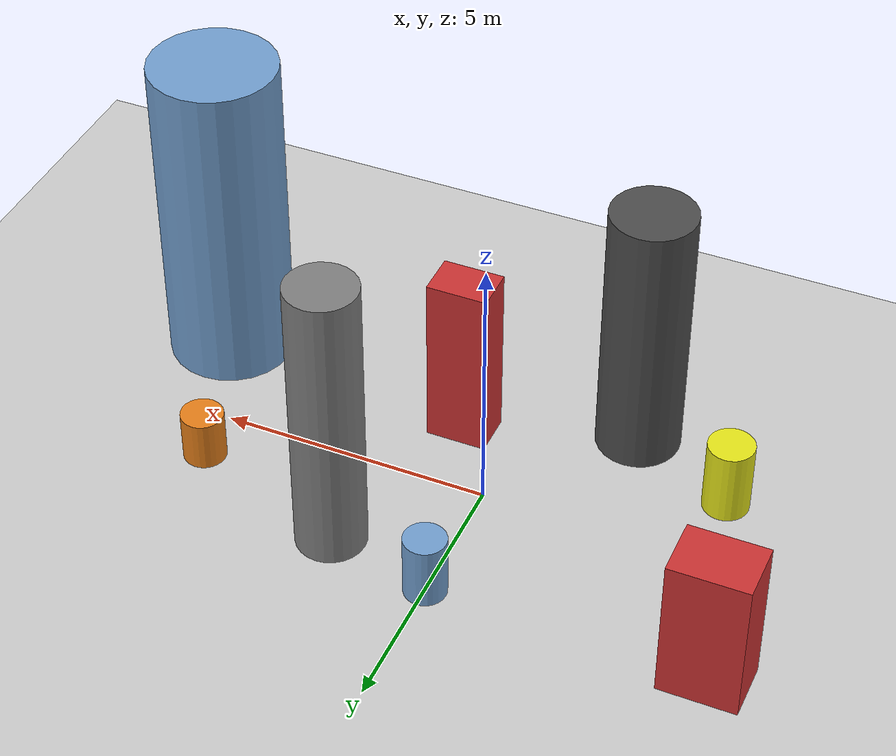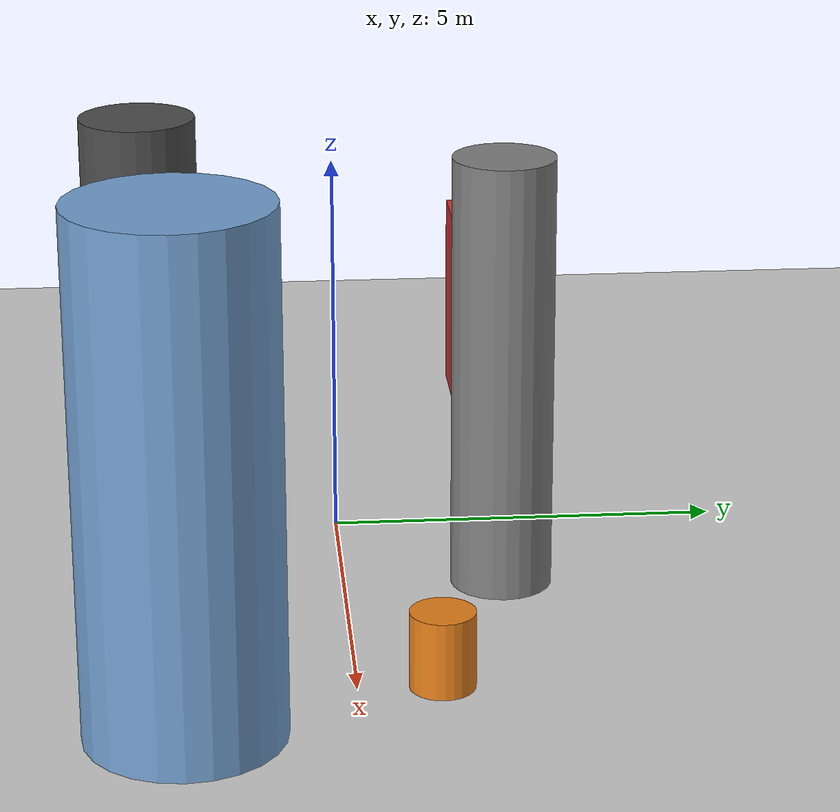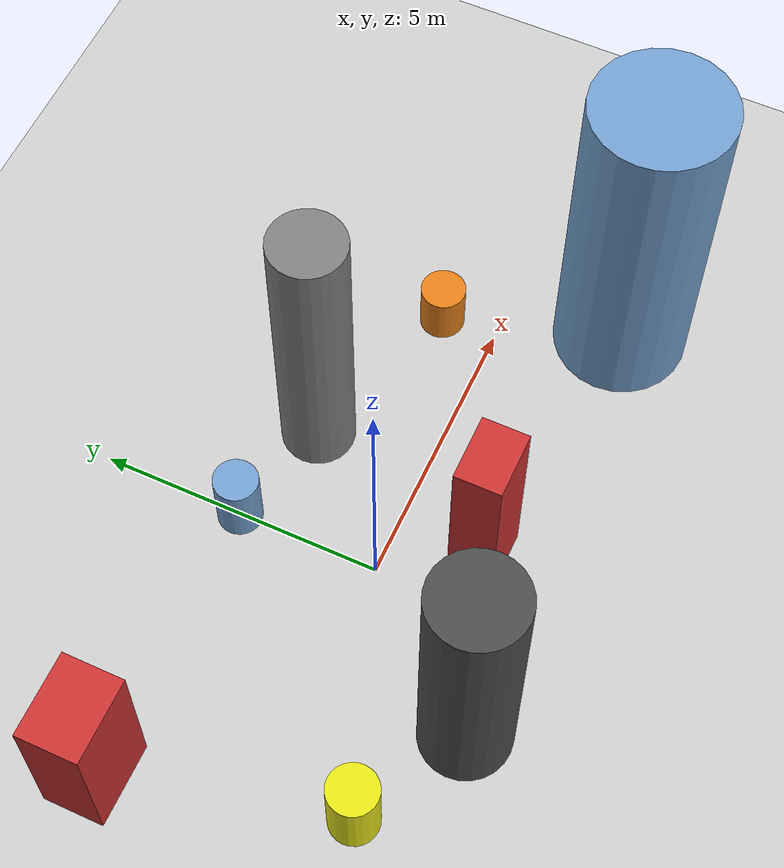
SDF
<?xml version='1.0'?>
<sdf version='1.6'>
  <world name='routeA_rl_v1__support_expansion__rl_train__mixed_3d_low_density_route__000008'>
    <!-- Sun light -->
    <light name='sun' type='directional'>
      <cast_shadows>1</cast_shadows>
      <pose>0 0 10 0 0 0</pose>
      <diffuse>0.8 0.8 0.8 1</diffuse>
      <specular>0.2 0.2 0.2 1</specular>
      <attenuation>
        <range>1000</range>
        <constant>0.9</constant>
        <linear>0.01</linear>
        <quadratic>0.001</quadratic>
      </attenuation>
      <direction>-0.5 0.1 -0.9</direction>
    </light>

    <!-- Ground plane -->
    <model name='ground_plane'>
      <static>1</static>
      <link name='link'>
        <collision name='collision'>
          <geometry>
            <plane>
              <normal>0 0 1</normal>
              <size>100 100</size>
            </plane>
          </geometry>
          <surface>
            <contact>
              <collide_bitmask>65535</collide_bitmask>
              <ode/>
            </contact>
            <friction>
              <ode>
                <mu>100</mu>
                <mu2>50</mu2>
              </ode>
              <torsional><ode/></torsional>
            </friction>
            <bounce/>
          </surface>
          <max_contacts>10</max_contacts>
        </collision>
        <visual name='visual'>
          <cast_shadows>0</cast_shadows>
          <geometry>
            <plane>
              <normal>0 0 1</normal>
              <size>100 100</size>
            </plane>
          </geometry>
          <material>
            <script>
              <uri>file://media/materials/scripts/gazebo.material</uri>
              <n>Gazebo/Grey</n>
            </script>
          </material>
        </visual>
      </link>
    </model>

    <!-- Environment -->
    <magnetic_field>6e-06 2.3e-05 -4.2e-05</magnetic_field>
    <atmosphere type='adiabatic'/>
    <physics name='default_physics' default='0' type='ode'>
      <gravity>0 0 -9.8</gravity>
      <max_step_size>0.004</max_step_size>
      <real_time_factor>1</real_time_factor>
      <real_time_update_rate>250</real_time_update_rate>
    </physics>
    <scene>
      <ambient>0.4 0.4 0.4 1</ambient>
      <background>0.7 0.7 0.7 1</background>
      <shadows>1</shadows>
    </scene>
    <wind/>
    <spherical_coordinates>
      <surface_model>EARTH_WGS84</surface_model>
      <latitude_deg>0</latitude_deg>
      <longitude_deg>0</longitude_deg>
      <elevation>0</elevation>
      <heading_deg>0</heading_deg>
    </spherical_coordinates>

    <!-- ============ OBSTACLES (8) ============ -->
    <model name='low_obs_0'>
      <static>1</static>
      <link name='link'>
        <visual name='visual'>
          <geometry>
            <cylinder>
              <radius>0.4258</radius>
              <length>1.4235</length>
            </cylinder>
          </geometry>
          <material>
            <script>
              <n>Gazebo/Yellow</n>
              <uri>file://media/materials/scripts/gazebo.material</uri>
            </script>
            <ambient>0.9 0.9 0.1 1</ambient>
          </material>
        </visual>
        <collision name='collision'>
          <geometry>
            <cylinder>
              <radius>0.4258</radius>
              <length>1.4235</length>
            </cylinder>
          </geometry>
          <max_contacts>10</max_contacts>
          <surface>
            <contact><ode/></contact>
            <bounce/>
            <friction>
              <ode><mu>1</mu><mu2>1</mu2></ode>
              <torsional><ode/></torsional>
            </friction>
          </surface>
        </collision>
      </link>
      <pose>-4.0000 -1.5000 0.7118 0 0 0.0000</pose>
    </model>

    <model name='low_obs_1'>
      <static>1</static>
      <link name='link'>
        <visual name='visual'>
          <geometry>
            <cylinder>
              <radius>0.3865</radius>
              <length>1.2167</length>
            </cylinder>
          </geometry>
          <material>
            <script>
              <n>Gazebo/Blue</n>
              <uri>file://media/materials/scripts/gazebo.material</uri>
            </script>
            <ambient>0.447 0.624 0.812 1</ambient>
          </material>
        </visual>
        <collision name='collision'>
          <geometry>
            <cylinder>
              <radius>0.3865</radius>
              <length>1.2167</length>
            </cylinder>
          </geometry>
          <max_contacts>10</max_contacts>
          <surface>
            <contact><ode/></contact>
            <bounce/>
            <friction>
              <ode><mu>1</mu><mu2>1</mu2></ode>
              <torsional><ode/></torsional>
            </friction>
          </surface>
        </collision>
      </link>
      <pose>0.0000 2.5000 0.6083 0 0 0.0000</pose>
    </model>

    <model name='low_obs_2'>
      <static>1</static>
      <link name='link'>
        <visual name='visual'>
          <geometry>
            <cylinder>
              <radius>0.3949</radius>
              <length>0.9602</length>
            </cylinder>
          </geometry>
          <material>
            <script>
              <n>Gazebo/Orange</n>
              <uri>file://media/materials/scripts/gazebo.material</uri>
            </script>
            <ambient>0.9 0.5 0.1 1</ambient>
          </material>
        </visual>
        <collision name='collision'>
          <geometry>
            <cylinder>
              <radius>0.3949</radius>
              <length>0.9602</length>
            </cylinder>
          </geometry>
          <max_contacts>10</max_contacts>
          <surface>
            <contact><ode/></contact>
            <bounce/>
            <friction>
              <ode><mu>1</mu><mu2>1</mu2></ode>
              <torsional><ode/></torsional>
            </friction>
          </surface>
        </collision>
      </link>
      <pose>5.0000 1.0000 0.4801 0 0 0.0000</pose>
    </model>

    <model name='tall_obs_0'>
      <static>1</static>
      <link name='link'>
        <visual name='visual'>
          <geometry>
            <cylinder>
              <radius>0.7789</radius>
              <length>5.1048</length>
            </cylinder>
          </geometry>
          <material>
            <script>
              <n>Gazebo/DarkGrey</n>
              <uri>file://media/materials/scripts/gazebo.material</uri>
            </script>
            <ambient>0.3 0.3 0.3 1</ambient>
          </material>
        </visual>
        <collision name='collision'>
          <geometry>
            <cylinder>
              <radius>0.7789</radius>
              <length>5.1048</length>
            </cylinder>
          </geometry>
          <max_contacts>10</max_contacts>
          <surface>
            <contact><ode/></contact>
            <bounce/>
            <friction>
              <ode><mu>1</mu><mu2>1</mu2></ode>
              <torsional><ode/></torsional>
            </friction>
          </surface>
        </collision>
      </link>
      <pose>-2.0000 -2.5000 2.5524 0 0 0.0000</pose>
    </model>

    <model name='tall_obs_1'>
      <static>1</static>
      <link name='link'>
        <visual name='visual'>
          <geometry>
            <cylinder>
              <radius>0.6402</radius>
              <length>5.5585</length>
            </cylinder>
          </geometry>
          <material>
            <script>
              <n>Gazebo/Grey</n>
              <uri>file://media/materials/scripts/gazebo.material</uri>
            </script>
            <ambient>0.5 0.5 0.5 1</ambient>
          </material>
        </visual>
        <collision name='collision'>
          <geometry>
            <cylinder>
              <radius>0.6402</radius>
              <length>5.5585</length>
            </cylinder>
          </geometry>
          <max_contacts>10</max_contacts>
          <surface>
            <contact><ode/></contact>
            <bounce/>
            <friction>
              <ode><mu>1</mu><mu2>1</mu2></ode>
              <torsional><ode/></torsional>
            </friction>
          </surface>
        </collision>
      </link>
      <pose>2.0000 2.0000 2.7792 0 0 0.0000</pose>
    </model>

    <model name='tall_obs_2'>
      <static>1</static>
      <link name='link'>
        <visual name='visual'>
          <geometry>
            <cylinder>
              <radius>1.1769</radius>
              <length>6.2426</length>
            </cylinder>
          </geometry>
          <material>
            <script>
              <n>Gazebo/Blue</n>
              <uri>file://media/materials/scripts/gazebo.material</uri>
            </script>
            <ambient>0.447 0.624 0.812 1</ambient>
          </material>
        </visual>
        <collision name='collision'>
          <geometry>
            <cylinder>
              <radius>1.1769</radius>
              <length>6.2426</length>
            </cylinder>
          </geometry>
          <max_contacts>10</max_contacts>
          <surface>
            <contact><ode/></contact>
            <bounce/>
            <friction>
              <ode><mu>1</mu><mu2>1</mu2></ode>
              <torsional><ode/></torsional>
            </friction>
          </surface>
        </collision>
      </link>
      <pose>6.0000 -2.0000 3.1213 0 0 0.0000</pose>
    </model>

    <model name='med_obs_0'>
      <static>1</static>
      <link name='link'>
        <visual name='visual'>
          <geometry>
            <box>
              <size>1.4143 1.0512 2.7808</size>
            </box>
          </geometry>
          <material>
            <script>
              <n>Gazebo/Red</n>
              <uri>file://media/materials/scripts/gazebo.material</uri>
            </script>
            <ambient>0.8 0.2 0.2 1</ambient>
          </material>
        </visual>
        <collision name='collision'>
          <geometry>
            <box>
              <size>1.4143 1.0512 2.7808</size>
            </box>
          </geometry>
          <max_contacts>10</max_contacts>
          <surface>
            <contact><ode/></contact>
            <bounce/>
            <friction>
              <ode><mu>1</mu><mu2>1</mu2></ode>
              <torsional><ode/></torsional>
            </friction>
          </surface>
        </collision>
      </link>
      <pose>-5.0000 2.5000 1.3904 0 0 0.0000</pose>
    </model>

    <model name='med_obs_1'>
      <static>1</static>
      <link name='link'>
        <visual name='visual'>
          <geometry>
            <box>
              <size>1.1236 0.8028 3.4019</size>
            </box>
          </geometry>
          <material>
            <script>
              <n>Gazebo/Red</n>
              <uri>file://media/materials/scripts/gazebo.material</uri>
            </script>
            <ambient>0.8 0.2 0.2 1</ambient>
          </material>
        </visual>
        <collision name='collision'>
          <geometry>
            <box>
              <size>1.1236 0.8028 3.4019</size>
            </box>
          </geometry>
          <max_contacts>10</max_contacts>
          <surface>
            <contact><ode/></contact>
            <bounce/>
            <friction>
              <ode><mu>1</mu><mu2>1</mu2></ode>
              <torsional><ode/></torsional>
            </friction>
          </surface>
        </collision>
      </link>
      <pose>1.0000 -1.5000 1.7010 0 0 0.0000</pose>
    </model>

    <!-- GUI camera -->
    <gui fullscreen='0'>
      <camera name='user_camera'>
        <pose>-15 0 18 0 0.85 0.15</pose>
        <view_controller>orbit</view_controller>
        <projection_type>perspective</projection_type>
      </camera>
    </gui>
  </world>
</sdf>
